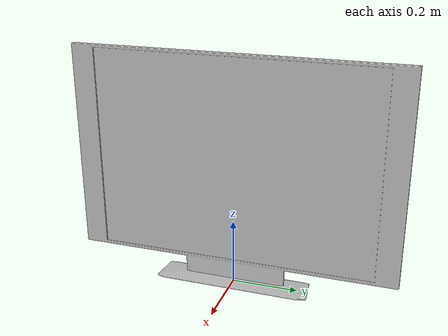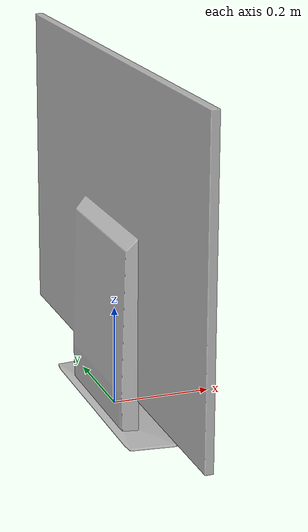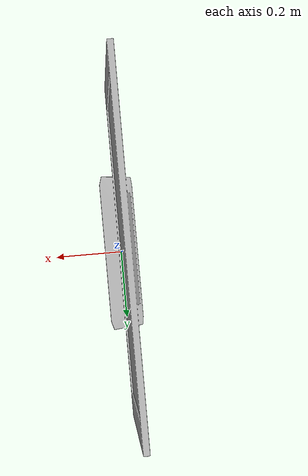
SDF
<?xml version='1.0'?>
<sdf version='1.4'>
  <model name='112'>
    <pose>0 0 0 0 0 0</pose>
    <static>true</static>
    <link name='link'>
      <collision name='collision'>
        <pose>0 0 0 0 0 0</pose>
        <geometry>
          <box>
            <size>0.0996884 0.99 2</size>
          </box>
        </geometry>
      </collision>
      <visual name='visual'>
        <pose>0 0 0 0 0 0</pose>
        <geometry>
          <mesh><uri>model://112/112.dae</uri></mesh>
        </geometry>
      </visual>
    </link>
  </model>
</sdf>
